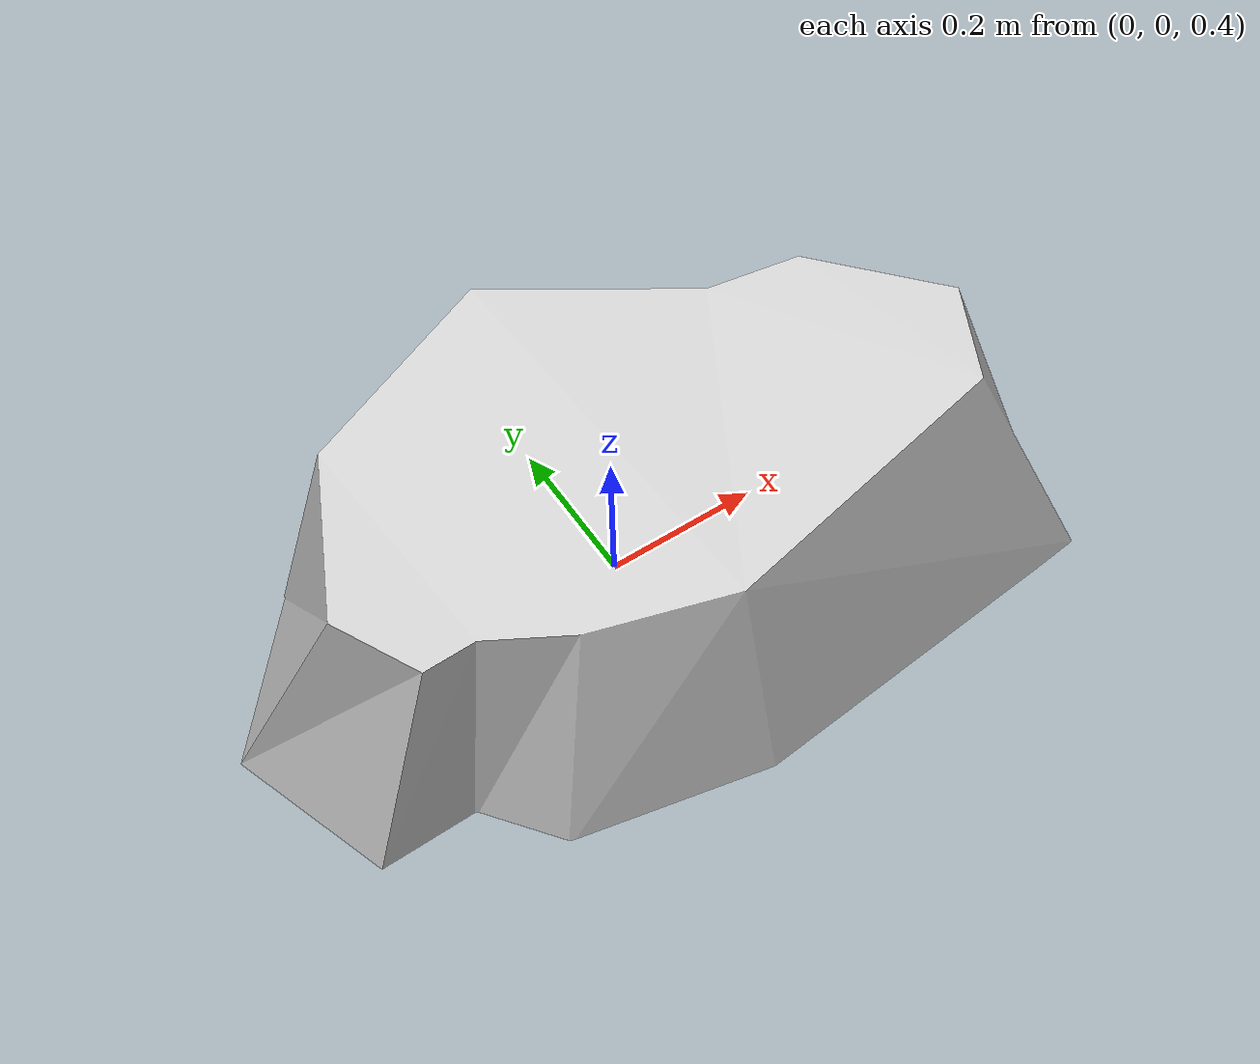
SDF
<?xml version="1.0" ?>
<sdf version="1.6">
  <model name="rock1">
    <pose>0 0 0.4 0 0 0</pose>
    <static>true</static>
    <link name="link">
      <collision name='collision'>
        <pose frame=''>.02 -.05 .1 0 1.55 -.15</pose>
        <geometry>
          <cylinder>
            <radius>.22</radius>
            <length>.72</length>
          </cylinder>
        </geometry>
      </collision>
      <visual name="visual">
        <geometry>
          <mesh>
            <uri>model://rock_1/meshes/model.dae</uri>
          </mesh>
        </geometry>
        <material>
          <script>
            <uri>model://rock_1/materials/scripts</uri>
            <uri>model://rock_1/materials/textures</uri>
            <name>rock/1</name>
          </script>
        </material>
      </visual>
    </link>
  </model>
</sdf>
